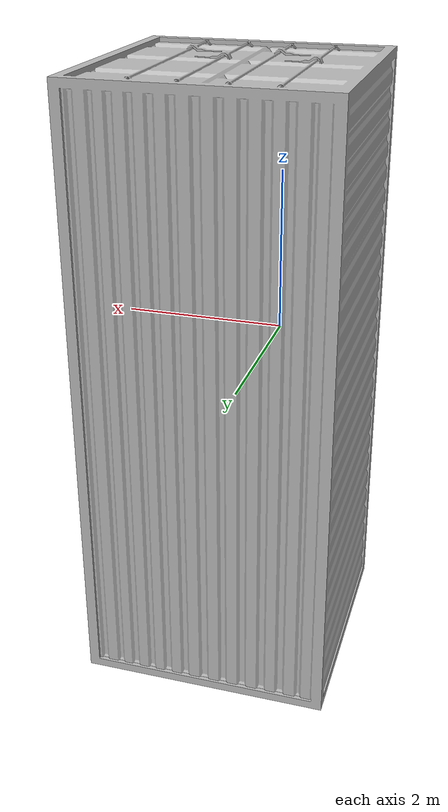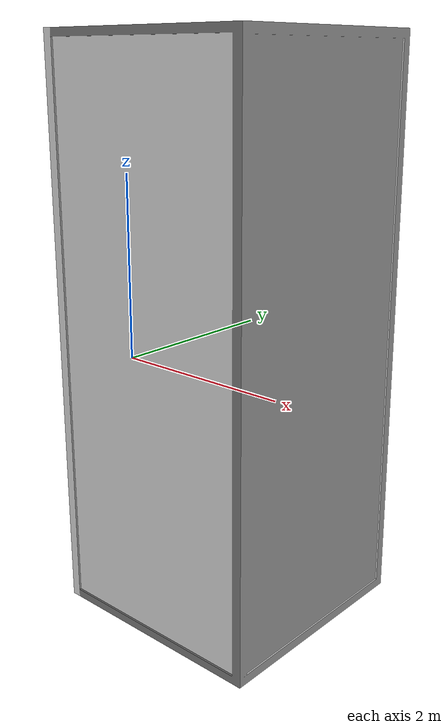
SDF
<?xml version="1.0"?>
<!--  |    This document was autogenerated by scene_to_spawner from terrain.dae                |  -->
<!--  |    EDITING THIS FILE BY HAND IS NOT RECOMMENDED                                        |  -->
<sdf version="1.4">
  <model name="container">
    <static>true</static>
    <link name="link">
      <visual name="visual">
        <geometry>
          <mesh>
            <uri>file://$(find ecn_sonar)/urdf/container.dae</uri>
          </mesh>
        </geometry>
      </visual>
      <collision name="collision">
        <geometry>
           <box>
            <size>.95 .95 2.35</size>
          </box>
        </geometry>
        <pose>0.055 0.465 0 0 0 0</pose>
        <surface>
          <friction>
            <ode>
              <mu>100</mu>
              <mu2>50</mu2>
            </ode>
          </friction>
        </surface>
	<laser_retro>8010</laser_retro>
      </collision>
    </link>
  </model>
  </sdf>
